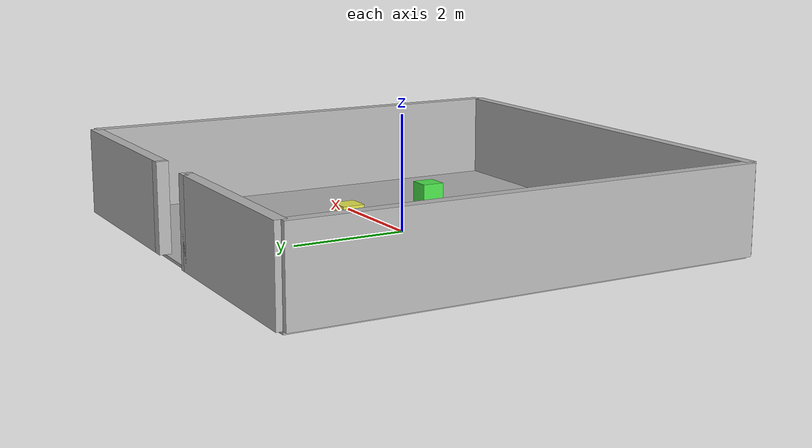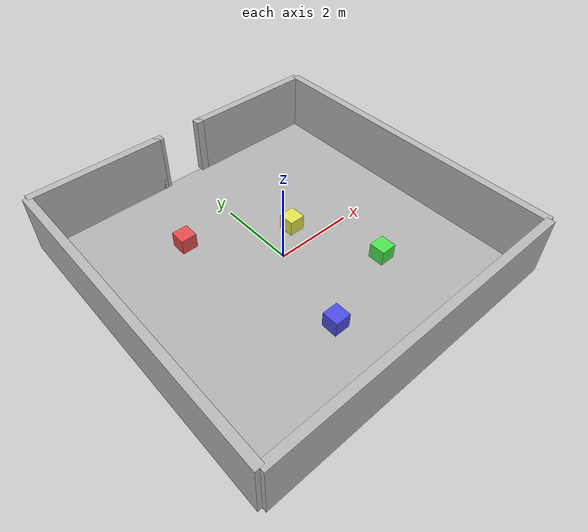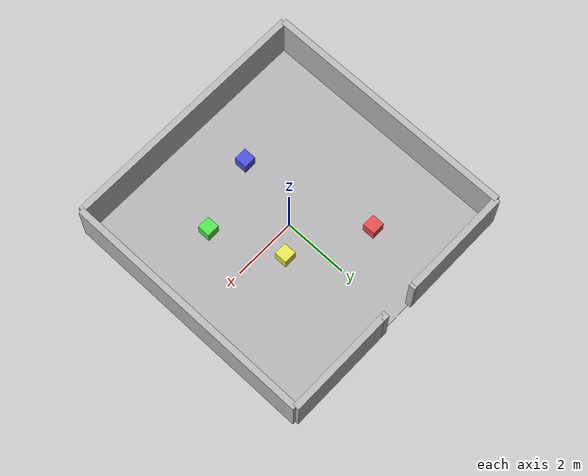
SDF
<sdf version="1.6">
  <model name="turtlebot3_square_room">
    <static>true</static>
    <allow_auto_disable>1</allow_auto_disable>

    <!-- Piso principal de la habitación -->
    <model name="floor">
      <pose>0 0 -0.025 0 0 0</pose>
      <static>true</static>
      <link name="link">
        <collision name="collision">
          <geometry>
            <box>
              <size>8 8 0.05</size>
            </box>
          </geometry>
        </collision>
        <visual name="visual">
          <geometry>
            <box>
              <size>8 8 0.05</size>
            </box>
          </geometry>
          <material>
            <ambient>0.6 0.6 0.6 1</ambient>
            <diffuse>0.7 0.7 0.7 1</diffuse>
          </material>
        </visual>
      </link>
    </model>

    <!-- Pared izquierda -->
    <model name="wall_west">
      <pose>-4 0 0.75 0 0 0</pose>
      <static>true</static>
      <link name="link">
        <collision name="collision">
          <geometry>
            <box>
              <size>0.2 8 1.5</size>
            </box>
          </geometry>
        </collision>
        <visual name="visual">
          <geometry>
            <box>
              <size>0.2 8 1.5</size>
            </box>
          </geometry>
        </visual>
      </link>
    </model>

    <!-- Pared derecha -->
    <model name="wall_east">
      <pose>4 0 0.75 0 0 0</pose>
      <static>true</static>
      <link name="link">
        <collision name="collision">
          <geometry>
            <box>
              <size>0.2 8 1.5</size>
            </box>
          </geometry>
        </collision>
        <visual name="visual">
          <geometry>
            <box>
              <size>0.2 8 1.5</size>
            </box>
          </geometry>
        </visual>
      </link>
    </model>

    <!-- Pared sur -->
    <model name="wall_south">
      <pose>0 -4 0.75 0 0 0</pose>
      <static>true</static>
      <link name="link">
        <collision name="collision">
          <geometry>
            <box>
              <size>8 0.2 1.5</size>
            </box>
          </geometry>
        </collision>
        <visual name="visual">
          <geometry>
            <box>
              <size>8 0.2 1.5</size>
            </box>
          </geometry>
        </visual>
      </link>
    </model>

    <!-- Pared norte segmentada para la puerta -->
    <model name="wall_north_left">
      <pose>-2.3 4 0.75 0 0 0</pose>
      <static>true</static>
      <link name="link">
        <collision name="collision">
          <geometry>
            <box>
              <size>3.4 0.2 1.5</size>
            </box>
          </geometry>
        </collision>
        <visual name="visual">
          <geometry>
            <box>
              <size>3.4 0.2 1.5</size>
            </box>
          </geometry>
        </visual>
      </link>
    </model>

    <model name="wall_north_right">
      <pose>2.3 4 0.75 0 0 0</pose>
      <static>true</static>
      <link name="link">
        <collision name="collision">
          <geometry>
            <box>
              <size>3.4 0.2 1.5</size>
            </box>
          </geometry>
        </collision>
        <visual name="visual">
          <geometry>
            <box>
              <size>3.4 0.2 1.5</size>
            </box>
          </geometry>
        </visual>
      </link>
    </model>

    <!-- Marcos laterales de la puerta -->
    <model name="door_frame_left">
      <pose>-0.6 4 0.75 0 0 0</pose>
      <static>true</static>
      <link name="link">
        <collision name="collision">
          <geometry>
            <box>
              <size>0.2 0.2 1.5</size>
            </box>
          </geometry>
        </collision>
        <visual name="visual">
          <geometry>
            <box>
              <size>0.2 0.2 1.5</size>
            </box>
          </geometry>
        </visual>
      </link>
    </model>

    <model name="door_frame_right">
      <pose>0.6 4 0.75 0 0 0</pose>
      <static>true</static>
      <link name="link">
        <collision name="collision">
          <geometry>
            <box>
              <size>0.2 0.2 1.5</size>
            </box>
          </geometry>
        </collision>
        <visual name="visual">
          <geometry>
            <box>
              <size>0.2 0.2 1.5</size>
            </box>
          </geometry>
        </visual>
      </link>
    </model>

    <!-- Cubos dispersos en la habitación -->
    <model name="cube_1">
      <pose>-1.5 1.8 0.2 0 0 0</pose>
      <static>false</static>
      <link name="link">
        <inertial>
          <mass>1.0</mass>
          <inertia>
            <ixx>0.02</ixx>
            <iyy>0.02</iyy>
            <izz>0.02</izz>
            <ixy>0</ixy>
            <ixz>0</ixz>
            <iyz>0</iyz>
          </inertia>
        </inertial>
        <collision name="collision">
          <geometry>
            <box>
              <size>0.4 0.4 0.4</size>
            </box>
          </geometry>
        </collision>
        <visual name="visual">
          <geometry>
            <box>
              <size>0.4 0.4 0.4</size>
            </box>
          </geometry>
          <material>
            <ambient>0.8 0.2 0.2 1</ambient>
            <diffuse>0.9 0.3 0.3 1</diffuse>
          </material>
        </visual>
      </link>
    </model>

    <model name="cube_2">
      <pose>1.7 -1.5 0.2 0 0 0</pose>
      <static>false</static>
      <link name="link">
        <inertial>
          <mass>1.0</mass>
          <inertia>
            <ixx>0.02</ixx>
            <iyy>0.02</iyy>
            <izz>0.02</izz>
            <ixy>0</ixy>
            <ixz>0</ixz>
            <iyz>0</iyz>
          </inertia>
        </inertial>
        <collision name="collision">
          <geometry>
            <box>
              <size>0.4 0.4 0.4</size>
            </box>
          </geometry>
        </collision>
        <visual name="visual">
          <geometry>
            <box>
              <size>0.4 0.4 0.4</size>
            </box>
          </geometry>
          <material>
            <ambient>0.2 0.8 0.2 1</ambient>
            <diffuse>0.3 0.9 0.3 1</diffuse>
          </material>
        </visual>
      </link>
    </model>

    <model name="cube_3">
      <pose>-0.5 -2.2 0.2 0 0 0</pose>
      <static>false</static>
      <link name="link">
        <inertial>
          <mass>1.0</mass>
          <inertia>
            <ixx>0.02</ixx>
            <iyy>0.02</iyy>
            <izz>0.02</izz>
            <ixy>0</ixy>
            <ixz>0</ixz>
            <iyz>0</iyz>
          </inertia>
        </inertial>
        <collision name="collision">
          <geometry>
            <box>
              <size>0.4 0.4 0.4</size>
            </box>
          </geometry>
        </collision>
        <visual name="visual">
          <geometry>
            <box>
              <size>0.4 0.4 0.4</size>
            </box>
          </geometry>
          <material>
            <ambient>0.2 0.2 0.8 1</ambient>
            <diffuse>0.3 0.3 0.9 1</diffuse>
          </material>
        </visual>
      </link>
    </model>

    <model name="cube_4">
      <pose>0.8 0.6 0.2 0 0 0</pose>
      <static>false</static>
      <link name="link">
        <inertial>
          <mass>1.0</mass>
          <inertia>
            <ixx>0.02</ixx>
            <iyy>0.02</iyy>
            <izz>0.02</izz>
            <ixy>0</ixy>
            <ixz>0</ixz>
            <iyz>0</iyz>
          </inertia>
        </inertial>
        <collision name="collision">
          <geometry>
            <box>
              <size>0.4 0.4 0.4</size>
            </box>
          </geometry>
        </collision>
        <visual name="visual">
          <geometry>
            <box>
              <size>0.4 0.4 0.4</size>
            </box>
          </geometry>
          <material>
            <ambient>0.8 0.8 0.2 1</ambient>
            <diffuse>0.9 0.9 0.3 1</diffuse>
          </material>
        </visual>
      </link>
    </model>

  </model>
</sdf>
